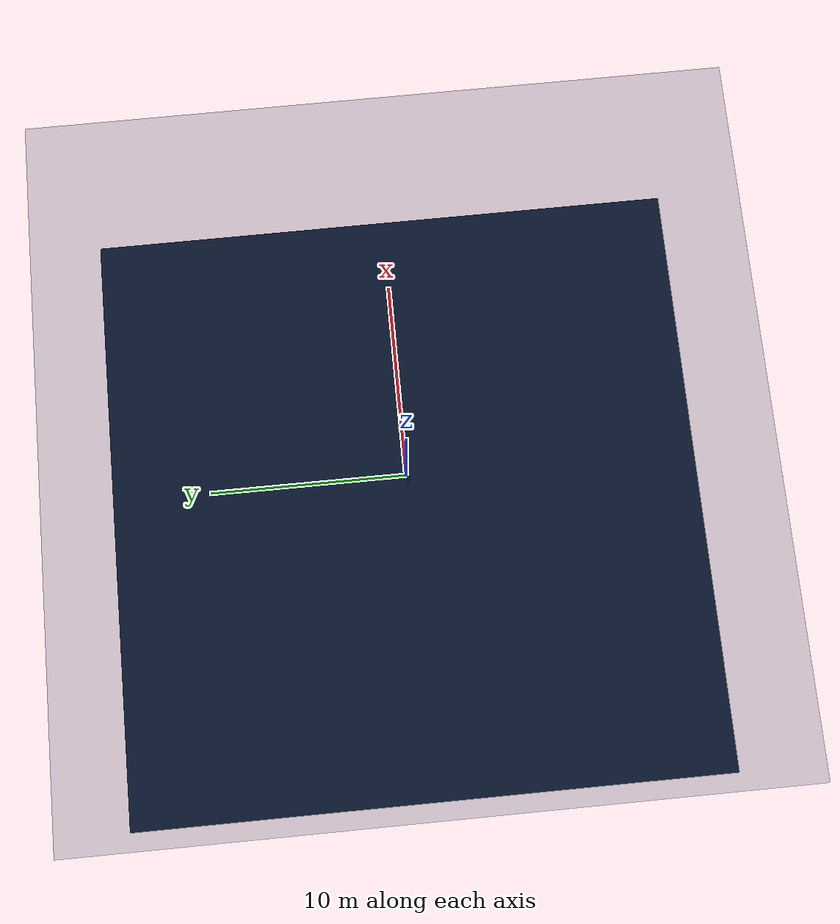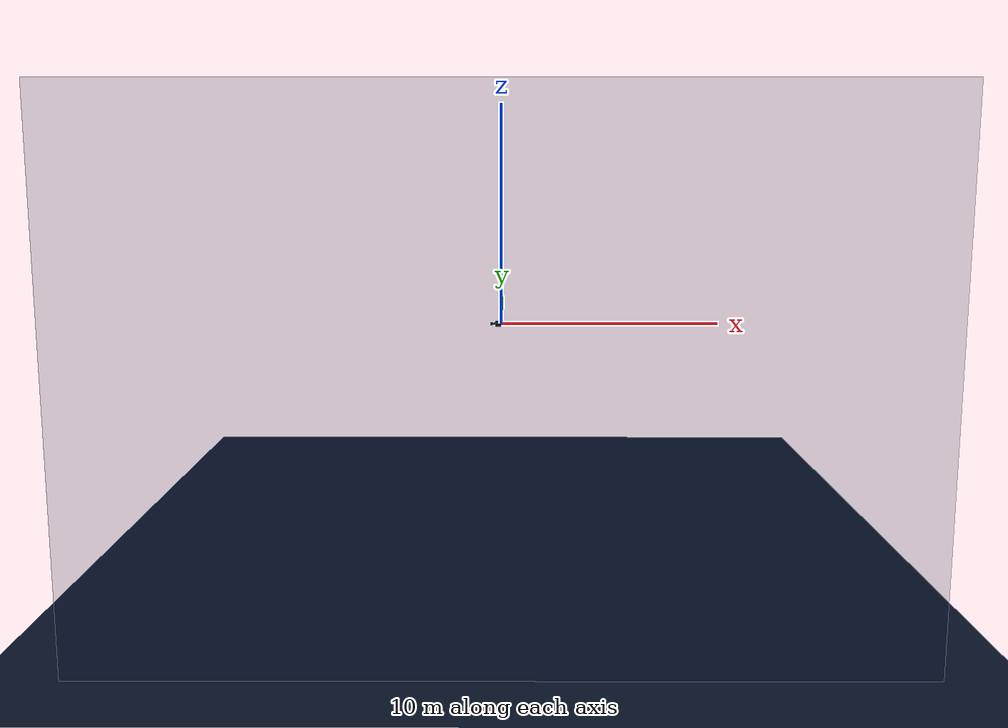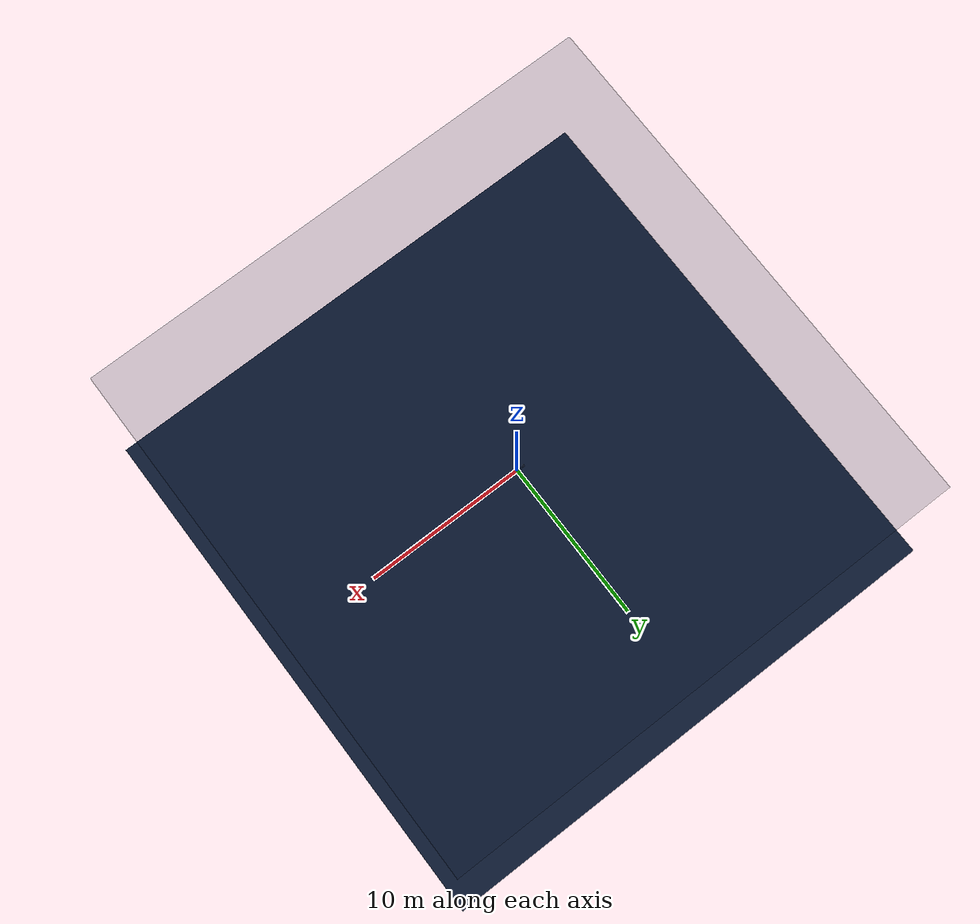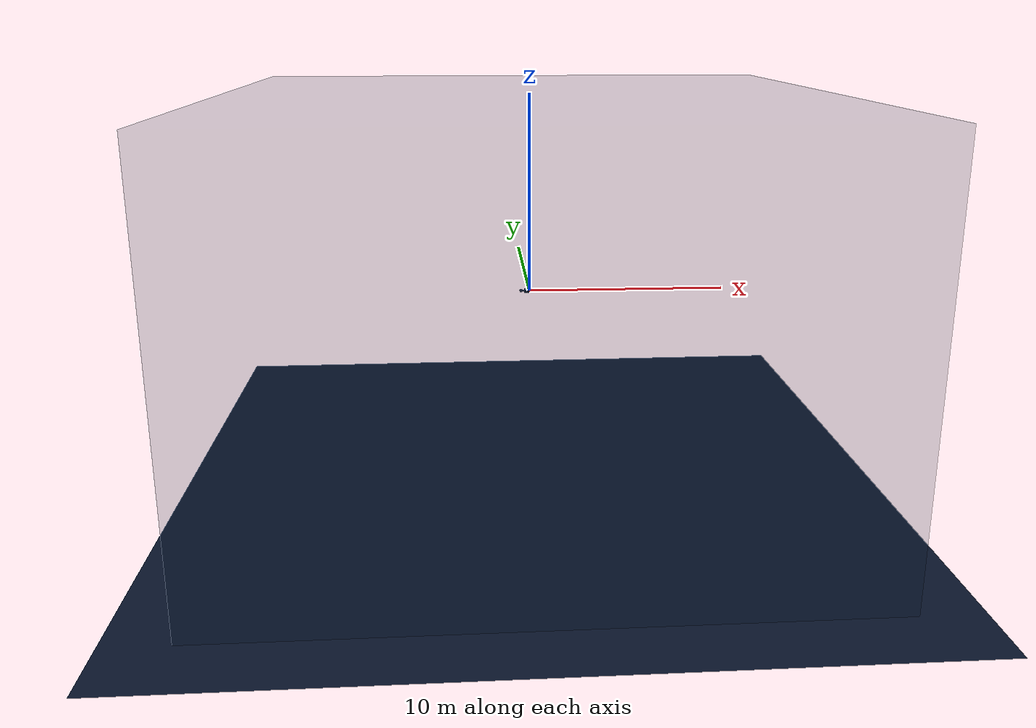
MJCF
<mujoco model="halcyon">

  <!-- ── Compiler ──────────────────────────────────────────────── -->
  <compiler angle="radian" autolimits="true"/>

  <!-- ── Physics options ───────────────────────────────────────── -->
  <option
    timestep   = "0.01"
    gravity    = "0 0 0"
    density    = "1000"
    viscosity  = "0.001"
    integrator = "RK4"
    solver     = "Newton"
    iterations = "50"
    tolerance  = "1e-10">
  </option>

  <!-- ── Visual settings ───────────────────────────────────────── -->
  <visual>
    <global offwidth="1280" offheight="720"/>
    <headlight ambient="0.4 0.5 0.6" diffuse="0.6 0.7 0.8" specular="0.1 0.1 0.1"/>
    <rgba haze="0.05 0.1 0.2 1"/>
  </visual>

  <!-- ── Assets ────────────────────────────────────────────────── -->
  <asset>
    <material name="hull"     rgba="0.15 0.22 0.35 1.0" shininess="0.8" specular="0.6"/>
    <material name="thruster" rgba="0.25 0.30 0.40 1.0" shininess="0.5" specular="0.4"/>
    <material name="fin"      rgba="0.10 0.18 0.28 1.0" shininess="0.3" specular="0.2"/>
    <material name="nose"     rgba="0.20 0.55 0.65 1.0" shininess="0.9" specular="0.7"/>
    <material name="target"   rgba="0.15 0.85 0.55 0.6" shininess="0.2" specular="0.1"/>
    <material name="water"    rgba="0.02 0.08 0.18 0.15" shininess="0.0" specular="0.0"/>
    <material name="sensor"   rgba="0.90 0.70 0.10 0.8" shininess="0.5" specular="0.3"/>
  </asset>

  <!-- ── Defaults ──────────────────────────────────────────────── -->
  <default>
    <geom contype="1" conaffinity="1" condim="3" friction="0.4 0.01 0.01"/>

    <!-- Thruster motor defaults — isolated in their own class -->
    <default class="thruster">
      <motor ctrllimited="true" ctrlrange="-1 1" gear="20 0 0 0 0.11 0"/>
    </default>

    <!-- Visual-only geoms: no collision, no mass contribution -->
    <default class="visual">
      <geom contype="0" conaffinity="0" group="2" mass="0"/>
    </default>
  </default>

  <!-- ── Contact exclusions ────────────────────────────────────── -->
  <contact>
    <exclude body1="halcyon" body2="goal"/>
  </contact>

  <!-- ── World ─────────────────────────────────────────────────── -->
  <worldbody>

    <!-- Ocean volume — visual only, group 2 (hidden in training renders) -->
    <geom name     = "ocean_volume"
          type     = "box"
          size     = "15 15 10"
          pos      = "0 0 0"
          contype  = "0" conaffinity = "0"
          material = "water"
          group    = "2"
          mass     = "0"/>

    <!-- Grid floor — spatial reference, visual only -->
    <geom name     = "floor"
          type     = "plane"
          size     = "20 20 0.1"
          pos      = "0 0 -10"
          contype  = "0" conaffinity = "0"
          rgba     = "0.05 0.1 0.2 0.4"
          group    = "2"
          mass     = "0"/>

    <body name="halcyon" pos="0 0 0" euler="0 0 0">

      <joint name="root" type="free" damping="0" armature="0"/>

      <!-- ── Hull geometry ──────────────────────────────────── -->

      <!-- Main hull: prolate spheroid (half-lengths x=0.45, y=z=0.07) -->
      <geom name     = "hull_main"
            type     = "ellipsoid"
            size     = "0.45 0.07 0.07"
            pos      = "0.0 0 0"
            material = "hull"
            mass     = "10.8"/>

      <!-- Nose cap: teal accent, visually distinct in paper figures -->
      <geom name     = "nose_cap"
            type     = "ellipsoid"
            size     = "0.12 0.065 0.065"
            pos      = "0.48 0 0"
            material = "nose"
            mass     = "0.5"/>

      <!-- Tail fairing: blends hull into thruster ring -->
      <!-- euler="0 π/2 0" orients cylinder axis along X (forward) -->
      <geom name     = "tail_fairing"
            type     = "cylinder"
            size     = "0.04 0.06"
            pos      = "-0.44 0 0"
            euler    = "0 1.5708 0"
            material = "hull"
            mass     = "0.3"/>

      <!-- ── Stabiliser fins (passive, fixed) ──────────────── -->
      <!-- Dorsal (top) -->
      <geom name     = "fin_dorsal"
            type     = "box"
            size     = "0.12 0.006 0.055"
            pos      = "-0.15 0 0.072"
            material = "fin"
            mass     = "0.1"/>

      <!-- Ventral (bottom) -->
      <geom name     = "fin_ventral"
            type     = "box"
            size     = "0.12 0.006 0.055"
            pos      = "-0.15 0 -0.072"
            material = "fin"
            mass     = "0.1"/>

      <!-- Port (left) -->
      <geom name     = "fin_port"
            type     = "box"
            size     = "0.12 0.055 0.006"
            pos      = "-0.15 0.072 0"
            material = "fin"
            mass     = "0.1"/>

      <!-- Starboard (right) -->
      <geom name     = "fin_starboard"
            type     = "box"
            size     = "0.12 0.055 0.006"
            pos      = "-0.15 -0.072 0"
            material = "fin"
            mass     = "0.1"/>

      <!-- ── Thruster housings (visual, mass included) ──────── -->
      <geom name="housing_top"   type="cylinder" size="0.022 0.055"
            pos="-0.46 0 0.055"   euler="0 1.5708 0" material="thruster" mass="0.25"/>
      <geom name="housing_bot"   type="cylinder" size="0.022 0.055"
            pos="-0.46 0 -0.055"  euler="0 1.5708 0" material="thruster" mass="0.25"/>
      <geom name="housing_left"  type="cylinder" size="0.022 0.055"
            pos="-0.46 0.055 0"   euler="0 1.5708 0" material="thruster" mass="0.25"/>
      <geom name="housing_right" type="cylinder" size="0.022 0.055"
            pos="-0.46 -0.055 0"  euler="0 1.5708 0" material="thruster" mass="0.25"/>

      <!-- ── Thruster force application sites ──────────────── -->
      <site name="thruster_top"   pos="-0.52 0 0.055"   size="0.015" rgba="0.2 0.9 0.5 0.8"/>
      <site name="thruster_bot"   pos="-0.52 0 -0.055"  size="0.015" rgba="0.2 0.9 0.5 0.8"/>
      <site name="thruster_left"  pos="-0.52 0.055 0"   size="0.015" rgba="0.2 0.9 0.5 0.8"/>
      <site name="thruster_right" pos="-0.52 -0.055 0"  size="0.015" rgba="0.2 0.9 0.5 0.8"/>

      <!-- ── Sensor sites ───────────────────────────────────── -->

      <!-- IMU at centre of mass — clean inertial measurements -->
      <site name="imu"      pos="0 0 0"      size="0.012" rgba="1.0 0.7 0.1 0.9"/>

      <!-- DVL (Doppler Velocity Log) at keel — realistic AUV sensor -->
      <!-- Points downward; in Python env read linvel in body frame -->
      <site name="dvl"      pos="-0.1 0 -0.075" size="0.010" rgba="0.9 0.4 0.1 0.8"/>

      <!-- Depth sensor on top of hull -->
      <site name="depth"    pos="0 0 0.075"   size="0.008" rgba="0.9 0.9 0.1 0.7"/>

      <!-- Nose tip — forward rangefinder origin -->
      <site name="nose_tip" pos="0.60 0 0"    size="0.008" rgba="0.2 0.8 0.9 0.6"/>

      <!-- Port/starboard rangefinder origins -->
      <site name="range_port"      pos="0 0.075 0"  size="0.007" rgba="0.8 0.8 0.2 0.6"/>
      <site name="range_starboard" pos="0 -0.075 0" size="0.007" rgba="0.8 0.8 0.2 0.6"/>

      <!-- Upward-looking rangefinder (useful for under-ice scenarios) -->
      <site name="range_up"        pos="0 0 0.075"  size="0.007" rgba="0.8 0.8 0.2 0.6"/>

    </body>

    <body name="goal" pos="5 0 0">
      <geom name     = "goal_sphere"
            type     = "sphere"
            size     = "0.15"
            contype  = "0" conaffinity = "0"
            material = "target"
            group    = "1"
            mass     = "0"/>
      <site name="goal_site" pos="0 0 0" size="0.02" rgba="0.1 1.0 0.5 1.0"/>
    </body>

    <!-- ── Lights ──────────────────────────────────────────────── -->
    <light name="sun"     pos="0 0 8" dir="0 0 -1" diffuse="0.6 0.7 0.8" specular="0.2 0.2 0.2"/>
    <light name="ambient" pos="0 0 5" dir="0 0 -1" diffuse="0.2 0.3 0.4" specular="0.0 0.0 0.0"/>

    <!-- ── Cameras ─────────────────────────────────────────────── -->
    <!-- track: 3/4 view, good for demos and paper figures -->
    <camera name="track"  mode="trackcom" target="halcyon" pos="3 -3 2"    euler="0 0.5 0.8"/>
    <!-- side: pure lateral — shows depth control clearly -->
    <camera name="side"   mode="trackcom" target="halcyon" pos="0 -4 0"    euler="0 0 1.5708"/>
    <!-- top: overhead — shows planar navigation -->
    <camera name="top"    mode="trackcom" target="halcyon" pos="0 0 6"     euler="0 0 0"/>
    <!-- follow: tight chase cam — good for watching goal approaches -->
    <camera name="follow" mode="trackcom" target="halcyon" pos="-2 0 0.5"  euler="0 0.2 0"/>
    <!-- chase: fixed offset behind, level with body — cleanest for training viz -->
    <camera name="chase"  mode="trackcom" target="halcyon" pos="-3 0 1"    euler="0 0.3 0"/>

    <!-- ── Static obstacles ────────────────────────────────────── -->
    <geom name="obs_0" type="sphere" size="0.4"
              pos="3 0 0" rgba="0.8 0.2 0.2 0.7"
              contype="1" conaffinity="1" group="1" mass="0"/>
    <geom name="obs_1" type="sphere" size="0.4"
              pos="-3 0 0" rgba="0.8 0.2 0.2 0.7"
              contype="1" conaffinity="1" group="1" mass="0"/>
    <geom name="obs_2" type="sphere" size="0.4"
              pos="0 3 0" rgba="0.8 0.2 0.2 0.7"
              contype="1" conaffinity="1" group="1" mass="0"/>
    <geom name="obs_3" type="sphere" size="0.4"
              pos="0 -3 0" rgba="0.8 0.2 0.2 0.7"
              contype="1" conaffinity="1" group="1" mass="0"/>
    <geom name="obs_4" type="sphere" size="0.4"
              pos="2 2 1" rgba="0.8 0.2 0.2 0.7"
              contype="1" conaffinity="1" group="1" mass="0"/>

  </worldbody>

  <!-- ── Actuators ─────────────────────────────────────────────── -->
  <actuator>
    <motor name="thrust_top"   class="thruster" site="thruster_top"/>
    <motor name="thrust_bot"   class="thruster" site="thruster_bot"/>
    <motor name="thrust_left"  class="thruster" site="thruster_left"/>
    <motor name="thrust_right" class="thruster" site="thruster_right"/>
  </actuator>

  <!-- ── Sensors ───────────────────────────────────────────────── -->
  <sensor>
    <!-- Navigation sensors (body frame via objtype=body) -->
    <framepos    name="pos"    objtype="body" objname="halcyon"/>
    <framequat   name="quat"   objtype="body" objname="halcyon"/>
    <framelinvel name="linvel" objtype="body" objname="halcyon"/>
    <frameangvel name="angvel" objtype="body" objname="halcyon"/>

    <!-- IMU sensors at dedicated site -->
    <accelerometer name="accel" site="imu"/>
    <gyro          name="gyro"  site="imu"/>

    <!--
      Actuator force sensors — read actual thrust produced each step.
      Useful for: energy penalty in reward, thrust allocation debugging,
      domain randomisation of actuator efficiency.
    -->
    <actuatorfrc name="act_top"   actuator="thrust_top"/>
    <actuatorfrc name="act_bot"   actuator="thrust_bot"/>
    <actuatorfrc name="act_left"  actuator="thrust_left"/>
    <actuatorfrc name="act_right" actuator="thrust_right"/>

    <rangefinder name="rf_fwd"  site="nose_tip"         cutoff="10.0"/>
    <rangefinder name="rf_port" site="range_port"        cutoff="5.0"/>
    <rangefinder name="rf_stbd" site="range_starboard"   cutoff="5.0"/>
    <rangefinder name="rf_up"   site="range_up"          cutoff="5.0"/>
  </sensor>

  <!-- ── Keyframes ─────────────────────────────────────────────── -->
  <keyframe>
    <key name="home"
         qpos="0 0 0  1 0 0 0"
         qvel="0 0 0  0 0 0"
         ctrl="0 0 0 0"/>
  </keyframe>

</mujoco>
